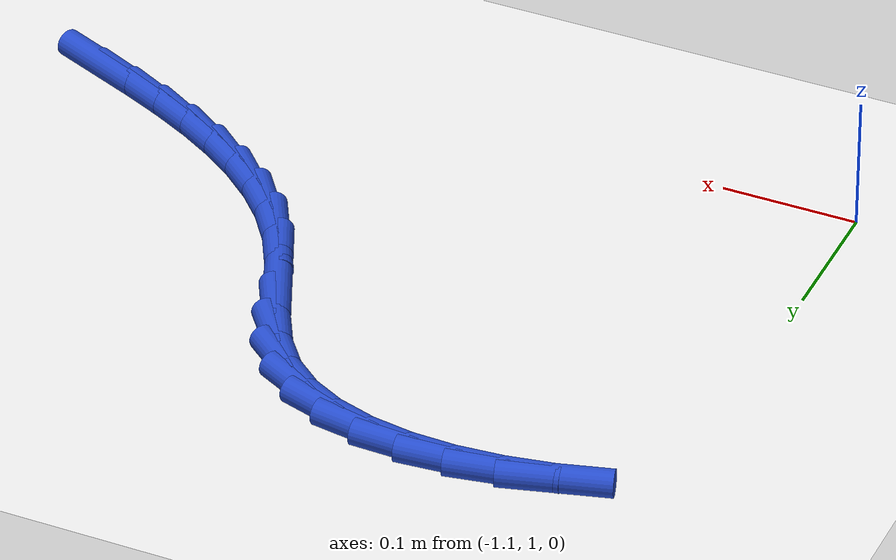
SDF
<sdf version="1.6">
 <world name="default">
  <model name="ground_plane">
   <static>1</static>
   <link name="link">
    <collision name="collision">
     <geometry><plane><normal>0 0 1</normal><size>100 100</size></plane></geometry>
     <surface><friction><ode><mu>100</mu><mu2>50</mu2></ode></friction></surface>
    </collision>
    <visual name="visual">
     <cast_shadows>0</cast_shadows>
     <geometry><plane><normal>0 0 1</normal><size>100 100</size></plane></geometry>
     <material>
      <script><uri>file://media/materials/scripts/gazebo.material</uri><name>Gazebo/WhiteGlow</name></script>
     </material>
    </visual>
   </link>
  </model>
  <model name="line">
   <link name="link_41">
    <pose>-0.5432041066635681 1.0540893483091085 0.01 0 1.57 -0.3936403204589608</pose>
    <collision name="collision">
     <geometry><cylinder><radius>0.01</radius><length>0.08</length></cylinder></geometry>
    </collision>
    <visual name="visual">
     <material>
      <script><name>Gazebo/Blue</name><uri>file://media/materials/scripts/gazebo.material</uri></script>
     </material>
     <geometry><cylinder><radius>0.01</radius><length>0.08</length></cylinder></geometry>
    </visual>
   </link>
   <link name="link_42">
    <pose>-0.5734414611614773 1.0666474272790578 0.01 0 1.57 -0.4243780661051072</pose>
    <collision name="collision">
     <geometry><cylinder><radius>0.01</radius><length>0.08</length></cylinder></geometry>
    </collision>
    <visual name="visual">
     <material>
      <script><name>Gazebo/Blue</name><uri>file://media/materials/scripts/gazebo.material</uri></script>
     </material>
     <geometry><cylinder><radius>0.01</radius><length>0.08</length></cylinder></geometry>
    </visual>
   </link>
   <link name="link_43">
    <pose>-0.6029241303973674 1.0799687007601737 0.01 0 1.57 -0.46931483670298435</pose>
    <collision name="collision">
     <geometry><cylinder><radius>0.01</radius><length>0.08</length></cylinder></geometry>
    </collision>
    <visual name="visual">
     <material>
      <script><name>Gazebo/Blue</name><uri>file://media/materials/scripts/gazebo.material</uri></script>
     </material>
     <geometry><cylinder><radius>0.01</radius><length>0.08</length></cylinder></geometry>
    </visual>
   </link>
   <link name="link_44">
    <pose>-0.6313027251501041 1.0943596065231618 0.01 0 1.57 -0.5297534367914862</pose>
    <collision name="collision">
     <geometry><cylinder><radius>0.01</radius><length>0.08</length></cylinder></geometry>
    </collision>
    <visual name="visual">
     <material>
      <script><name>Gazebo/Blue</name><uri>file://media/materials/scripts/gazebo.material</uri></script>
     </material>
     <geometry><cylinder><radius>0.01</radius><length>0.08</length></cylinder></geometry>
    </visual>
   </link>
   <link name="link_45">
    <pose>-0.6582278561985538 1.110126582338727 0.01 0 1.57 -0.6070804988161297</pose>
    <collision name="collision">
     <geometry><cylinder><radius>0.01</radius><length>0.08</length></cylinder></geometry>
    </collision>
    <visual name="visual">
     <material>
      <script><name>Gazebo/Blue</name><uri>file://media/materials/scripts/gazebo.material</uri></script>
     </material>
     <geometry><cylinder><radius>0.01</radius><length>0.08</length></cylinder></geometry>
    </visual>
   </link>
   <link name="link_46">
    <pose>-0.6833501343215828 1.1275760659775749 0.01 0 1.57 -0.7023138838810022</pose>
    <collision name="collision">
     <geometry><cylinder><radius>0.01</radius><length>0.08</length></cylinder></geometry>
    </collision>
    <visual name="visual">
     <material>
      <script><name>Gazebo/Blue</name><uri>file://media/materials/scripts/gazebo.material</uri></script>
     </material>
     <geometry><cylinder><radius>0.01</radius><length>0.08</length></cylinder></geometry>
    </visual>
   </link>
   <link name="link_47">
    <pose>-0.7063201702980559 1.1470144952104098 0.01 0 1.57 -0.8153735781821636</pose>
    <collision name="collision">
     <geometry><cylinder><radius>0.01</radius><length>0.08</length></cylinder></geometry>
    </collision>
    <visual name="visual">
     <material>
      <script><name>Gazebo/Blue</name><uri>file://media/materials/scripts/gazebo.material</uri></script>
     </material>
     <geometry><cylinder><radius>0.01</radius><length>0.08</length></cylinder></geometry>
    </visual>
   </link>
   <link name="link_48">
    <pose>-0.7267885749068392 1.1687483078079366 0.01 0 1.57 -0.944187451818332</pose>
    <collision name="collision">
     <geometry><cylinder><radius>0.01</radius><length>0.08</length></cylinder></geometry>
    </collision>
    <visual name="visual">
     <material>
      <script><name>Gazebo/Blue</name><uri>file://media/materials/scripts/gazebo.material</uri></script>
     </material>
     <geometry><cylinder><radius>0.01</radius><length>0.08</length></cylinder></geometry>
    </visual>
   </link>
   <link name="link_49">
    <pose>-0.7444059589267992 1.193083941540861 0.01 0 1.57 -1.0778306875273709</pose>
    <collision name="collision">
     <geometry><cylinder><radius>0.01</radius><length>0.08</length></cylinder></geometry>
    </collision>
    <visual name="visual">
     <material>
      <script><name>Gazebo/Blue</name><uri>file://media/materials/scripts/gazebo.material</uri></script>
     </material>
     <geometry><cylinder><radius>0.01</radius><length>0.08</length></cylinder></geometry>
    </visual>
   </link>
   <link name="link_50">
    <pose>-0.7589664634326562 1.2201882004132607 0.01 0 1.57 -1.1568648756387585</pose>
    <collision name="collision">
     <geometry><cylinder><radius>0.01</radius><length>0.08</length></cylinder></geometry>
    </collision>
    <visual name="visual">
     <material>
      <script><name>Gazebo/Blue</name><uri>file://media/materials/scripts/gazebo.material</uri></script>
     </material>
     <geometry><cylinder><radius>0.01</radius><length>0.08</length></cylinder></geometry>
    </visual>
   </link>
   <link name="link_51">
    <pose>-0.7715946815111623 1.2489335552387961 0.01 0 1.57 -1.1569846791971388</pose>
    <collision name="collision">
     <geometry><cylinder><radius>0.01</radius><length>0.08</length></cylinder></geometry>
    </collision>
    <visual name="visual">
     <material>
      <script><name>Gazebo/Blue</name><uri>file://media/materials/scripts/gazebo.material</uri></script>
     </material>
     <geometry><cylinder><radius>0.01</radius><length>0.08</length></cylinder></geometry>
    </visual>
   </link>
   <link name="link_52">
    <pose>-0.7841362641954972 1.2774909940088681 0.01 0 1.57 -1.076258914075671</pose>
    <collision name="collision">
     <geometry><cylinder><radius>0.01</radius><length>0.08</length></cylinder></geometry>
    </collision>
    <visual name="visual">
     <material>
      <script><name>Gazebo/Blue</name><uri>file://media/materials/scripts/gazebo.material</uri></script>
     </material>
     <geometry><cylinder><radius>0.01</radius><length>0.08</length></cylinder></geometry>
    </visual>
   </link>
   <link name="link_53">
    <pose>-0.7984439847052462 1.3040245758800404 0.01 0 1.57 -0.9031424003588444</pose>
    <collision name="collision">
     <geometry><cylinder><radius>0.01</radius><length>0.08</length></cylinder></geometry>
    </collision>
    <visual name="visual">
     <material>
      <script><name>Gazebo/Blue</name><uri>file://media/materials/scripts/gazebo.material</uri></script>
     </material>
     <geometry><cylinder><radius>0.01</radius><length>0.08</length></cylinder></geometry>
    </visual>
   </link>
   <link name="link_54">
    <pose>-0.8163404963824495 1.3267231351371294 0.01 0 1.57 -0.6783900038247324</pose>
    <collision name="collision">
     <geometry><cylinder><radius>0.01</radius><length>0.08</length></cylinder></geometry>
    </collision>
    <visual name="visual">
     <material>
      <script><name>Gazebo/Blue</name><uri>file://media/materials/scripts/gazebo.material</uri></script>
     </material>
     <geometry><cylinder><radius>0.01</radius><length>0.08</length></cylinder></geometry>
    </visual>
   </link>
   <link name="link_55">
    <pose>-0.8385837719429866 1.344651259926257 0.01 0 1.57 -0.4728296312682994</pose>
    <collision name="collision">
     <geometry><cylinder><radius>0.01</radius><length>0.08</length></cylinder></geometry>
    </collision>
    <visual name="visual">
     <material>
      <script><name>Gazebo/Blue</name><uri>file://media/materials/scripts/gazebo.material</uri></script>
     </material>
     <geometry><cylinder><radius>0.01</radius><length>0.08</length></cylinder></geometry>
    </visual>
   </link>
   <link name="link_56">
    <pose>-0.8646072235535318 1.3579630566838135 0.01 0 1.57 -0.2968446338213762</pose>
    <collision name="collision">
     <geometry><cylinder><radius>0.01</radius><length>0.08</length></cylinder></geometry>
    </collision>
    <visual name="visual">
     <material>
      <script><name>Gazebo/Blue</name><uri>file://media/materials/scripts/gazebo.material</uri></script>
     </material>
     <geometry><cylinder><radius>0.01</radius><length>0.08</length></cylinder></geometry>
    </visual>
   </link>
   <link name="link_57">
    <pose>-0.8937613890742512 1.3668808001702364 0.01 0 1.57 -0.148910115655145</pose>
    <collision name="collision">
     <geometry><cylinder><radius>0.01</radius><length>0.08</length></cylinder></geometry>
    </collision>
    <visual name="visual">
     <material>
      <script><name>Gazebo/Blue</name><uri>file://media/materials/scripts/gazebo.material</uri></script>
     </material>
     <geometry><cylinder><radius>0.01</radius><length>0.08</length></cylinder></geometry>
    </visual>
   </link>
   <link name="link_58">
    <pose>-0.92539680636531 1.371626765145961 0.01 0 1.57 -0.023793766773452747</pose>
    <collision name="collision">
     <geometry><cylinder><radius>0.01</radius><length>0.08</length></cylinder></geometry>
    </collision>
    <visual name="visual">
     <material>
      <script><name>Gazebo/Blue</name><uri>file://media/materials/scripts/gazebo.material</uri></script>
     </material>
     <geometry><cylinder><radius>0.01</radius><length>0.08</length></cylinder></geometry>
    </visual>
   </link>
   <link name="link_59">
    <pose>-0.9588640132868739 1.3724232263714236 0.01 0 1.57 0.08438232871574575</pose>
    <collision name="collision">
     <geometry><cylinder><radius>0.01</radius><length>0.08</length></cylinder></geometry>
    </collision>
    <visual name="visual">
     <material>
      <script><name>Gazebo/Blue</name><uri>file://media/materials/scripts/gazebo.material</uri></script>
     </material>
     <geometry><cylinder><radius>0.01</radius><length>0.08</length></cylinder></geometry>
    </visual>
   </link>
   <link name="link_60">
    <pose>-0.9935135476991082 1.369492458607061 0.01 0 1.57 0.18092418237907804</pose>
    <collision name="collision">
     <geometry><cylinder><radius>0.01</radius><length>0.08</length></cylinder></geometry>
    </collision>
    <visual name="visual">
     <material>
      <script><name>Gazebo/Blue</name><uri>file://media/materials/scripts/gazebo.material</uri></script>
     </material>
     <geometry><cylinder><radius>0.01</radius><length>0.08</length></cylinder></geometry>
    </visual>
   </link>
   <link name="link_61">
    <pose>-1.028695947462179 1.3630567366133084 0.01 0 1.57 0.27036167488859647</pose>
    <collision name="collision">
     <geometry><cylinder><radius>0.01</radius><length>0.08</length></cylinder></geometry>
    </collision>
    <visual name="visual">
     <material>
      <script><name>Gazebo/Blue</name><uri>file://media/materials/scripts/gazebo.material</uri></script>
     </material>
     <geometry><cylinder><radius>0.01</radius><length>0.08</length></cylinder></geometry>
    </visual>
   </link>
  </model>
 </world>
</sdf>
